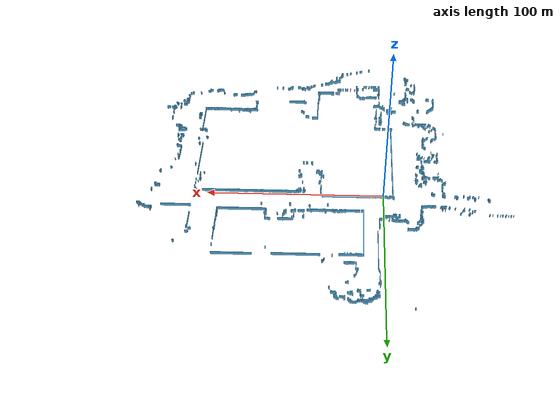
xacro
<?xml version="1.0"?>
<robot xmlns:xacro="http://www.ros.org/wiki/xacro"
       name="izs-campus">

  <xacro:include filename="$(find cob_gazebo_worlds)/urdf/common.xacro" />
  <xacro:include filename="$(find cob_gazebo_worlds)/urdf/materials.urdf.xacro" />

  <xacro:macro name="izs-campus" params="name">

    <gazebo>
      <plugin name="environment_gazebo_ros_control" filename="libgazebo_ros_control.so">
        <robotNamespace>world</robotNamespace>
        <robotParam>/world_description</robotParam>
      </plugin>
    </gazebo>

    <link name="world"/>

    <link name="projected_map">
      <xacro:box_inertial x="0.0" y="0.0" z="0.0" mass="5.0">
        <origin xyz="0 0 0" rpy="0 0 0" />
      </xacro:box_inertial>
      <collision name="collision">
        <pose>0 0 0 0 0 0</pose>
        <geometry>
            <mesh filename="package://cob_gazebo_worlds/Media/models/izs-campus/meshes/map.stl" />
        </geometry>
      </collision>
      <visual name="visual">
        <pose>0 0 0 0 0 0</pose>
        <geometry>
            <mesh filename="package://cob_gazebo_worlds/Media/models/izs-campus/meshes/map.stl" />
        </geometry>
      </visual>
    </link>

    <joint name="joint_maps" type="fixed">
      <origin xyz="0.0 0.0 0.0" rpy="0 0 0" />
      <parent link="world" />
      <child link="projected_map" />
    </joint>

    <gazebo>
      <static>true</static>
    </gazebo>

  </xacro:macro>
  <xacro:izs-campus name="izs-campus" />
</robot>

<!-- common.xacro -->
<robot xmlns:xacro="http://www.ros.org/wiki/xacro">

  <xacro:property name="M_PI" value="3.1415926535897931" />

  <!-- see https://secure.wikimedia.org/wikipedia/en/wiki/List_of_moment_of_inertia_tensors -->
  <xacro:macro name="sphere_inertial" params="radius mass *origin">
    <inertial>
      <mass value="${mass}" />
      <xacro:insert_block name="origin" />
      <inertia ixx="${0.4 * mass * radius * radius}" ixy="0.0" ixz="0.0"
        iyy="${0.4 * mass * radius * radius}" iyz="0.0"
        izz="${0.4 * mass * radius * radius}" />
    </inertial>
  </xacro:macro>

  <xacro:macro name="cylinder_inertial" params="radius length mass *origin">
    <inertial>
      <mass value="${mass}" />
      <xacro:insert_block name="origin" />
      <inertia ixx="${0.0833333 * mass * (3 * radius * radius + length * length)}" ixy="0.0" ixz="0.0"
        iyy="${0.0833333 * mass * (3 * radius * radius + length * length)}" iyz="0.0"
        izz="${0.5 * mass * radius * radius}" />
    </inertial>
  </xacro:macro>

  <xacro:macro name="box_inertial" params="x y z mass *origin">
    <inertial>
      <mass value="${mass}" />
      <xacro:insert_block name="origin" />
      <inertia ixx="${0.0833333 * mass * (y*y + z*z)}" ixy="0.0" ixz="0.0"
        iyy="${0.0833333 * mass * (x*x + z*z)}" iyz="0.0"
        izz="${0.0833333 * mass * (x*x + y*y)}" />
    </inertial>
  </xacro:macro>

  <xacro:macro name="default_inertial">
    <inertial>
      <mass value="0.01"/>
      <origin xyz="0 0 0"/>
      <inertia ixx="0.001" ixy="0.0" ixz="0.0" iyy="0.001" iyz="0.0" izz="0.001" />
    </inertial>
  </xacro:macro>

</robot>

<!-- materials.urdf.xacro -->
<robot>

  <material name="IPA/Blue">
    <color rgba="0.0 0.0 0.8 1.0"/>
  </material>

  <material name="IPA/Green">
    <color rgba="0.0 0.8 0.0 1.0"/>
  </material>

  <material name="IPA/Grey">
    <color rgba="0.7 0.7 0.7 1.0"/>
  </material>

  <material name="IPA/Grey2">
    <color rgba="0.81 0.81 0.81 1.0"/>
  </material>

  <material name="IPA/Red">
    <color rgba="0.8 0.0 0.0 1.0"/>
  </material>

  <material name="IPA/White">
    <color rgba="1.0 1.0 1.0 1.0"/>
  </material>

  <material name="IPA/Black">
    <color rgba="0.0 0.0 0.0 1.0"/>
  </material>

  <material name="IPA/Transparent">
    <color rgba="0.81 0.81 0.81 0.0"/>
  </material>

  <material name="IPA/LightBlue">
    <color rgba="0.624 0.698 0.858 1"/>
  </material>

</robot>
